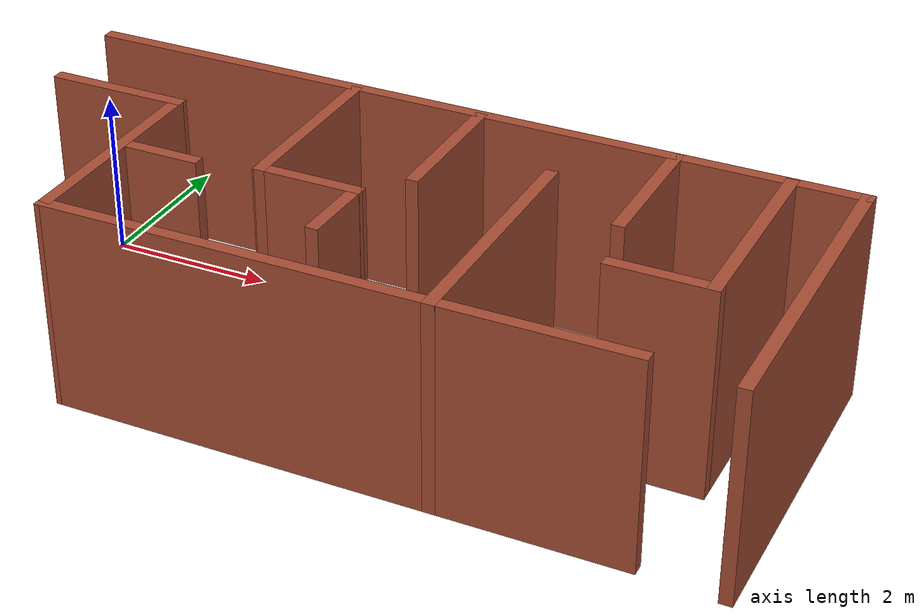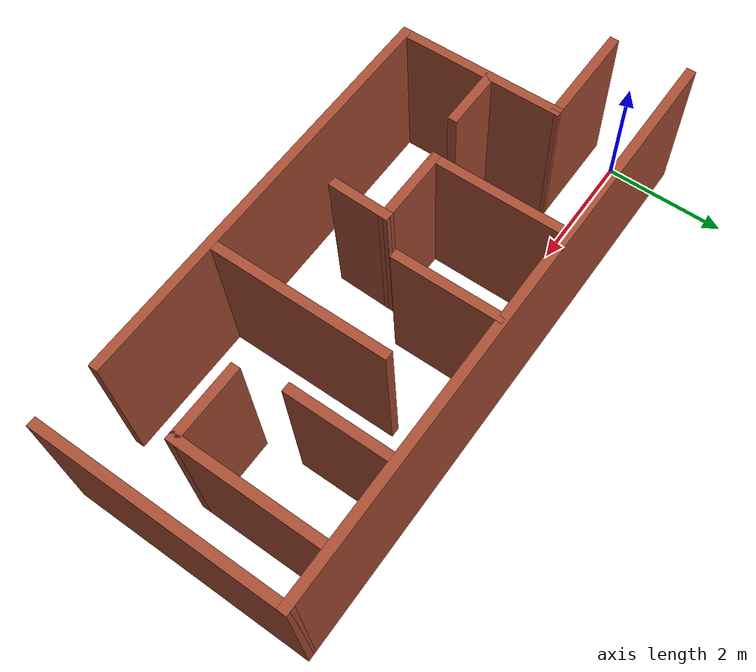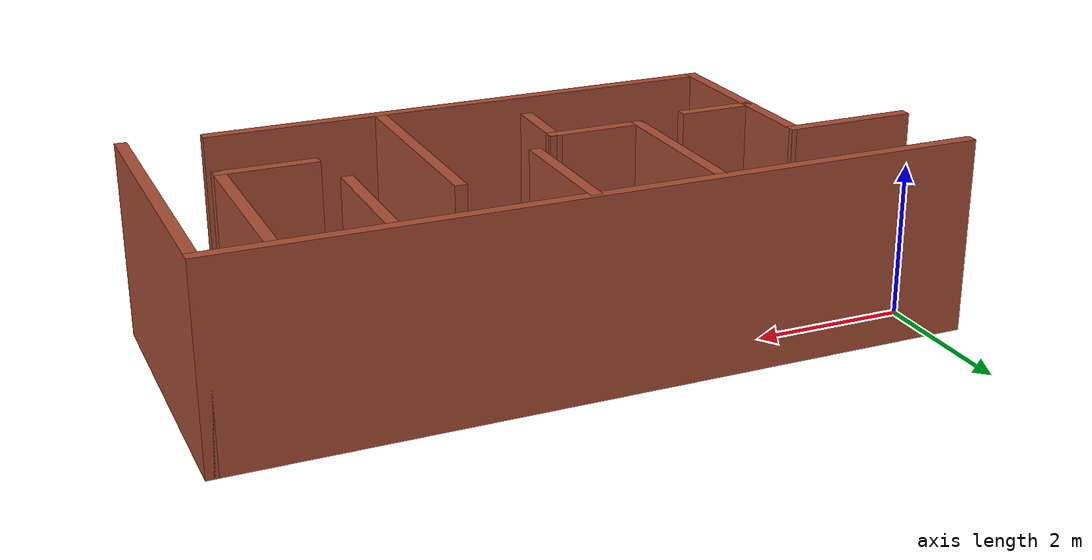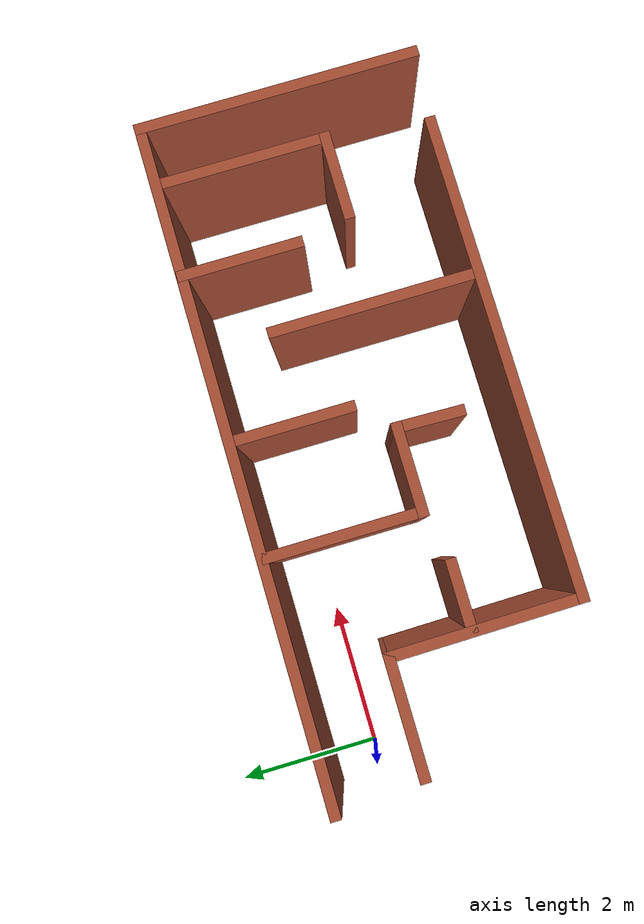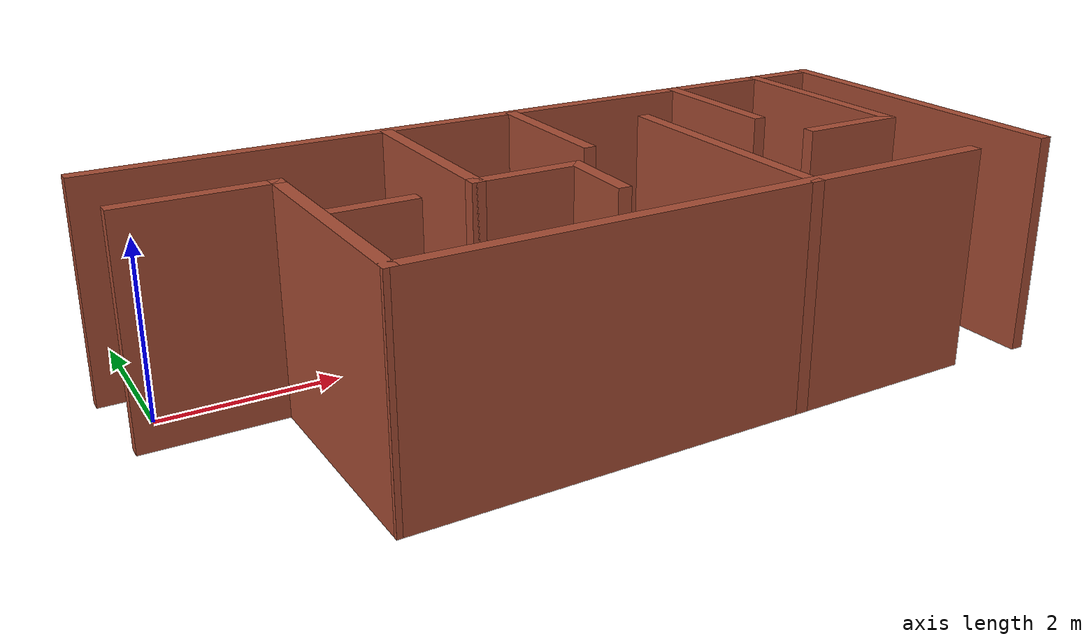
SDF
<?xml version='1.0'?>
<sdf version='1.7'>
  <model name='fp'>
    <pose>4.316 -1.245 0 0 -0 0</pose>
    <link name='Wall_14'>
      <collision name='Wall_14_Collision'>
        <geometry>
          <box>
            <size>9.5 0.15 2.5</size>
          </box>
        </geometry>
        <pose>0 0 1.25 0 -0 0</pose>
      </collision>
      <visual name='Wall_14_Visual'>
        <pose>0 0 1.25 0 -0 0</pose>
        <geometry>
          <box>
            <size>9.5 0.15 2.5</size>
          </box>
        </geometry>
        <material>
          <script>
            <uri>file://media/materials/scripts/gazebo.material</uri>
            <name>Gazebo/Bricks</name>
          </script>
          <ambient>1 1 1 1</ambient>
        </material>
        <meta>
          <layer>0</layer>
        </meta>
      </visual>
      <pose>0 1.925 0 0 -0 0</pose>
    </link>
    <link name='Wall_16'>
      <collision name='Wall_16_Collision'>
        <geometry>
          <box>
            <size>1.70491 0.15 2.5</size>
          </box>
        </geometry>
        <pose>0 0 1.25 0 -0 0</pose>
      </collision>
      <visual name='Wall_16_Visual'>
        <pose>0 0 1.25 0 -0 0</pose>
        <geometry>
          <box>
            <size>1.70491 0.15 2.5</size>
          </box>
        </geometry>
        <material>
          <script>
            <uri>file://media/materials/scripts/gazebo.material</uri>
            <name>Gazebo/Bricks</name>
          </script>
          <ambient>1 1 1 1</ambient>
        </material>
        <meta>
          <layer>0</layer>
        </meta>
      </visual>
      <pose>-3.7785 0.709 0 0 -0 0</pose>
    </link>
    <link name='Wall_17'>
      <collision name='Wall_17_Collision'>
        <geometry>
          <box>
            <size>2.75697 0.15 2.5</size>
          </box>
        </geometry>
        <pose>0 0 1.25 0 -0 0</pose>
      </collision>
      <visual name='Wall_17_Visual'>
        <pose>0 0 1.25 0 -0 0</pose>
        <geometry>
          <box>
            <size>2.75697 0.15 2.5</size>
          </box>
        </geometry>
        <material>
          <script>
            <uri>file://media/materials/scripts/gazebo.material</uri>
            <name>Gazebo/Bricks</name>
          </script>
          <ambient>1 1 1 1</ambient>
        </material>
        <meta>
          <layer>0</layer>
        </meta>
      </visual>
      <pose>-2.99 -0.5945 0 0 -0 -1.56236</pose>
    </link>
    <link name='Wall_18'>
      <collision name='Wall_18_Collision'>
        <geometry>
          <box>
            <size>6.78381 0.15 2.5</size>
          </box>
        </geometry>
        <pose>0 0 1.25 0 -0 0</pose>
      </collision>
      <visual name='Wall_18_Visual'>
        <pose>0 0 1.25 0 -0 0</pose>
        <geometry>
          <box>
            <size>6.78381 0.15 2.5</size>
          </box>
        </geometry>
        <material>
          <script>
            <uri>file://media/materials/scripts/gazebo.material</uri>
            <name>Gazebo/Bricks</name>
          </script>
          <ambient>1 1 1 1</ambient>
        </material>
        <meta>
          <layer>0</layer>
        </meta>
      </visual>
      <pose>0.338 -1.8865 0 0 -0 0.003467</pose>
    </link>
    <link name='Wall_22'>
      <collision name='Wall_22_Collision'>
        <geometry>
          <box>
            <size>1 0.15 2.5</size>
          </box>
        </geometry>
        <pose>0 0 1.25 0 -0 0</pose>
      </collision>
      <visual name='Wall_22_Visual'>
        <pose>0 0 1.25 0 -0 0</pose>
        <geometry>
          <box>
            <size>1 0.15 2.5</size>
          </box>
        </geometry>
        <material>
          <script>
            <uri>file://media/materials/scripts/gazebo.material</uri>
            <name>Gazebo/Bricks</name>
          </script>
          <ambient>1 1 1 1</ambient>
        </material>
        <meta>
          <layer>0</layer>
        </meta>
      </visual>
      <pose>-2.52 -0.407 0 0 -0 0</pose>
    </link>
    <link name='Wall_24'>
      <collision name='Wall_24_Collision'>
        <geometry>
          <box>
            <size>2.25 0.15 2.5</size>
          </box>
        </geometry>
        <pose>0 0 1.25 0 -0 0</pose>
      </collision>
      <visual name='Wall_24_Visual'>
        <pose>0 0 1.25 0 -0 0</pose>
        <geometry>
          <box>
            <size>2.25 0.15 2.5</size>
          </box>
        </geometry>
        <material>
          <script>
            <uri>file://media/materials/scripts/gazebo.material</uri>
            <name>Gazebo/Bricks</name>
          </script>
          <ambient>1 1 1 1</ambient>
        </material>
        <meta>
          <layer>0</layer>
        </meta>
      </visual>
      <pose>-1.344 0.809 0 0 -0 -1.5708</pose>
    </link>
    <link name='Wall_25'>
      <collision name='Wall_25_Collision'>
        <geometry>
          <box>
            <size>1.29509 0.15 2.5</size>
          </box>
        </geometry>
        <pose>0 0 1.25 0 -0 0</pose>
      </collision>
      <visual name='Wall_25_Visual'>
        <pose>0 0 1.25 0 -0 0</pose>
        <geometry>
          <box>
            <size>1.29509 0.15 2.5</size>
          </box>
        </geometry>
        <material>
          <script>
            <uri>file://media/materials/scripts/gazebo.material</uri>
            <name>Gazebo/Bricks</name>
          </script>
          <ambient>1 1 1 1</ambient>
        </material>
        <meta>
          <layer>0</layer>
        </meta>
      </visual>
      <pose>-0.7715 -0.241 0 0 -0 0</pose>
    </link>
    <link name='Wall_26'>
      <collision name='Wall_26_Collision'>
        <geometry>
          <box>
            <size>1 0.15 2.5</size>
          </box>
        </geometry>
        <pose>0 0 1.25 0 -0 0</pose>
      </collision>
      <visual name='Wall_26_Visual'>
        <pose>0 0 1.25 0 -0 0</pose>
        <geometry>
          <box>
            <size>1 0.15 2.5</size>
          </box>
        </geometry>
        <material>
          <script>
            <uri>file://media/materials/scripts/gazebo.material</uri>
            <name>Gazebo/Bricks</name>
          </script>
          <ambient>1 1 1 1</ambient>
        </material>
        <meta>
          <layer>0</layer>
        </meta>
      </visual>
      <pose>-0.21 -0.666 0 0 -0 -1.59667</pose>
    </link>
    <link name='Wall_28'>
      <collision name='Wall_28_Collision'>
        <geometry>
          <box>
            <size>1.75 0.15 2.5</size>
          </box>
        </geometry>
        <pose>0 0 1.25 0 -0 0</pose>
      </collision>
      <visual name='Wall_28_Visual'>
        <pose>0 0 1.25 0 -0 0</pose>
        <geometry>
          <box>
            <size>1.75 0.15 2.5</size>
          </box>
        </geometry>
        <material>
          <script>
            <uri>file://media/materials/scripts/gazebo.material</uri>
            <name>Gazebo/Bricks</name>
          </script>
          <ambient>1 1 1 1</ambient>
        </material>
        <meta>
          <layer>0</layer>
        </meta>
      </visual>
      <pose>0.234 1.07 0 0 -0 -1.5708</pose>
    </link>
    <link name='Wall_30'>
      <collision name='Wall_30_Collision'>
        <geometry>
          <box>
            <size>3 0.15 2.5</size>
          </box>
        </geometry>
        <pose>0 0 1.25 0 -0 0</pose>
      </collision>
      <visual name='Wall_30_Visual'>
        <pose>0 0 1.25 0 -0 0</pose>
        <geometry>
          <box>
            <size>3 0.15 2.5</size>
          </box>
        </geometry>
        <material>
          <script>
            <uri>file://media/materials/scripts/gazebo.material</uri>
            <name>Gazebo/Bricks</name>
          </script>
          <ambient>1 1 1 1</ambient>
        </material>
        <meta>
          <layer>0</layer>
        </meta>
      </visual>
      <pose>1.485 -0.458 0 0 -0 1.5708</pose>
    </link>
    <link name='Wall_33'>
      <collision name='Wall_33_Collision'>
        <geometry>
          <box>
            <size>1.75 0.15 2.5</size>
          </box>
        </geometry>
        <pose>0 0 1.25 0 -0 0</pose>
      </collision>
      <visual name='Wall_33_Visual'>
        <pose>0 0 1.25 0 -0 0</pose>
        <geometry>
          <box>
            <size>1.75 0.15 2.5</size>
          </box>
        </geometry>
        <material>
          <script>
            <uri>file://media/materials/scripts/gazebo.material</uri>
            <name>Gazebo/Bricks</name>
          </script>
          <ambient>1 1 1 1</ambient>
        </material>
        <meta>
          <layer>0</layer>
        </meta>
      </visual>
      <pose>2.556 1.115 0 0 -0 -1.5708</pose>
    </link>
    <link name='Wall_35'>
      <collision name='Wall_35_Collision'>
        <geometry>
          <box>
            <size>2.5 0.15 2.5</size>
          </box>
        </geometry>
        <pose>0 0 1.25 0 -0 0</pose>
      </collision>
      <visual name='Wall_35_Visual'>
        <pose>0 0 1.25 0 -0 0</pose>
        <geometry>
          <box>
            <size>2.5 0.15 2.5</size>
          </box>
        </geometry>
        <material>
          <script>
            <uri>file://media/materials/scripts/gazebo.material</uri>
            <name>Gazebo/Bricks</name>
          </script>
          <ambient>1 1 1 1</ambient>
        </material>
        <meta>
          <layer>0</layer>
        </meta>
      </visual>
      <pose>3.852 0.729 0 0 -0 -1.5708</pose>
    </link>
    <link name='Wall_36'>
      <collision name='Wall_36_Collision'>
        <geometry>
          <box>
            <size>1.25 0.15 2.5</size>
          </box>
        </geometry>
        <pose>0 0 1.25 0 -0 0</pose>
      </collision>
      <visual name='Wall_36_Visual'>
        <pose>0 0 1.25 0 -0 0</pose>
        <geometry>
          <box>
            <size>1.25 0.15 2.5</size>
          </box>
        </geometry>
        <material>
          <script>
            <uri>file://media/materials/scripts/gazebo.material</uri>
            <name>Gazebo/Bricks</name>
          </script>
          <ambient>1 1 1 1</ambient>
        </material>
        <meta>
          <layer>0</layer>
        </meta>
      </visual>
      <pose>3.302 -0.446 0 0 -0 3.14159</pose>
    </link>
    <link name='Wall_38'>
      <collision name='Wall_38_Collision'>
        <geometry>
          <box>
            <size>4 0.15 2.5</size>
          </box>
        </geometry>
        <pose>0 0 1.25 0 -0 0</pose>
      </collision>
      <visual name='Wall_38_Visual'>
        <pose>0 0 1.25 0 -0 0</pose>
        <geometry>
          <box>
            <size>4 0.15 2.5</size>
          </box>
        </geometry>
        <material>
          <script>
            <uri>file://media/materials/scripts/gazebo.material</uri>
            <name>Gazebo/Bricks</name>
          </script>
          <ambient>1 1 1 1</ambient>
        </material>
        <meta>
          <layer>0</layer>
        </meta>
      </visual>
      <pose>4.675 0 0 0 -0 -1.5708</pose>
    </link>
    <static>1</static>
  </model>
</sdf>
